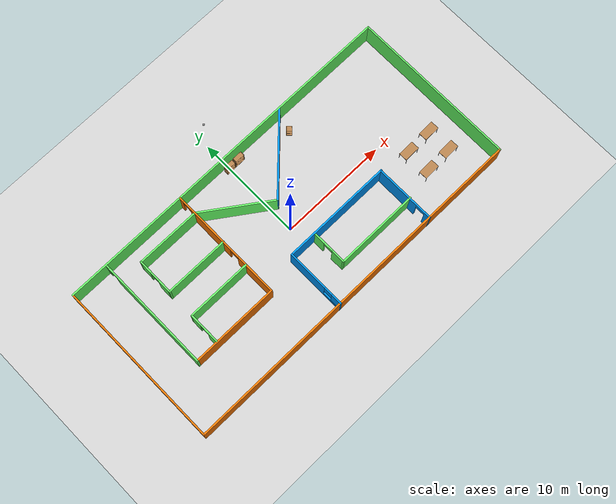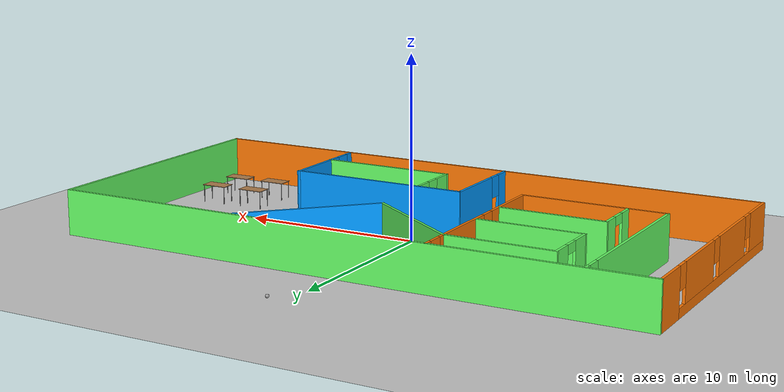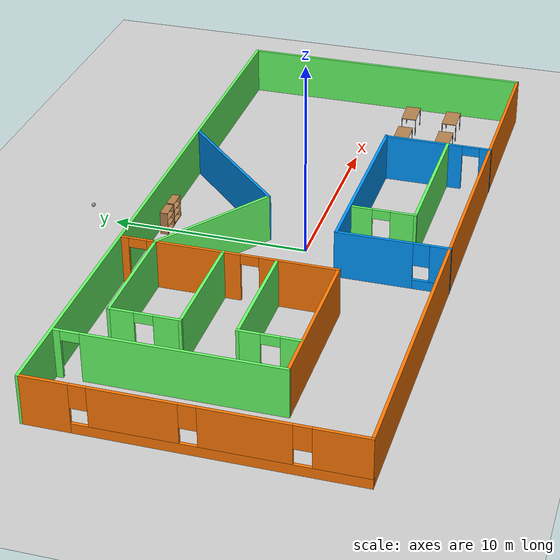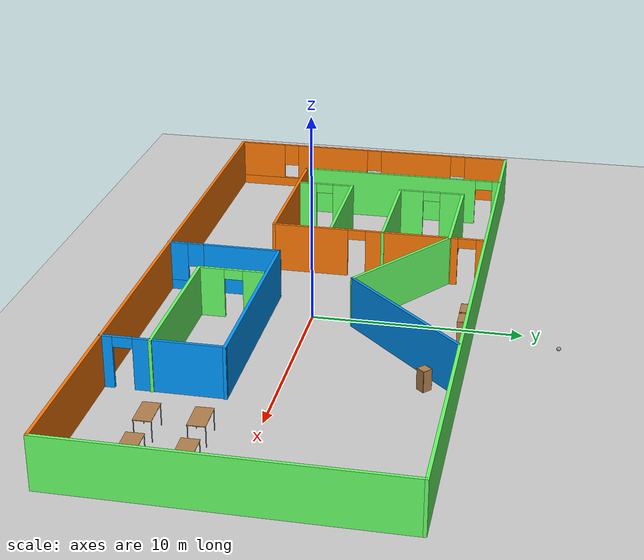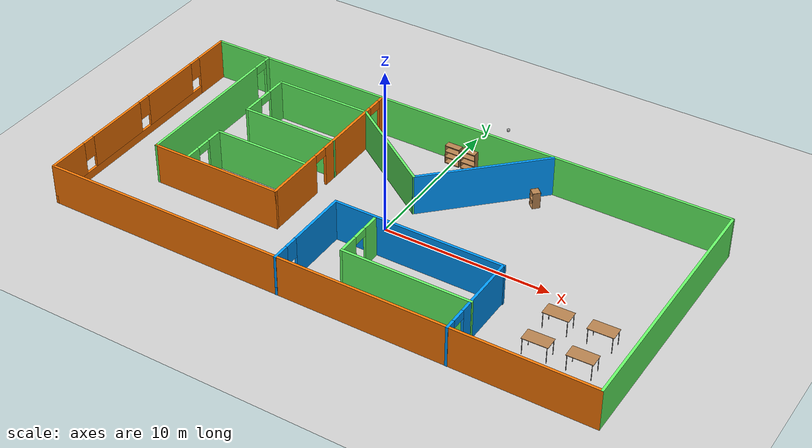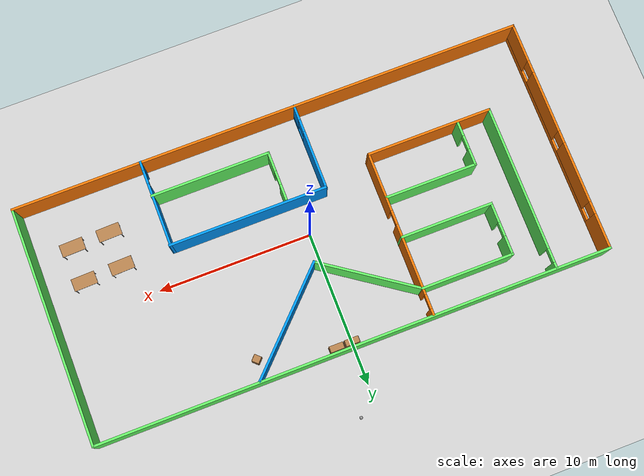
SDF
<sdf version="1.6">
 <world name="default">
  <plugin name="welcome_message" filename="libwelcome_message.so"/>
  <light name="sun" type="directional">
   <pose>0 0 10 0 -0 0</pose>
   <diffuse>0.8 0.8 0.8 1</diffuse>
   <specular>0.2 0.2 0.2 1</specular>
   <attenuation>
    <range>1000</range>
    <constant>0.9</constant>
    <linear>0.01</linear>
    <quadratic>0.001</quadratic>
   </attenuation>
   <direction>-0.5 0.1 -0.9</direction>
  </light>
  <model name="ground_plane">
   <static>1</static>
   <link name="link">
    <collision name="collision">
     <geometry><plane><normal>0 0 1</normal><size>100 100</size></plane></geometry>
     <surface>
      <contact><collide_bitmask>65535</collide_bitmask></contact>
      <friction><ode><mu>100</mu><mu2>50</mu2></ode></friction>
     </surface>
    </collision>
    <visual name="visual">
     <cast_shadows>0</cast_shadows>
     <geometry><plane><normal>0 0 1</normal><size>100 100</size></plane></geometry>
     <material>
      <script><uri>file://media/materials/scripts/gazebo.material</uri><name>Gazebo/Grey</name></script>
     </material>
    </visual>
   </link>
  </model>
  <gravity>0 0 -9.8</gravity>
  <magnetic_field>6e-06 2.3e-05 -4.2e-05</magnetic_field>
  <atmosphere type="adiabatic"/>
  <physics name="default_physics" default="0" type="ode">
   <max_step_size>0.001</max_step_size>
   <real_time_factor>1</real_time_factor>
   <real_time_update_rate>1000</real_time_update_rate>
  </physics>
  <scene><ambient>0.4 0.4 0.4 1</ambient><background>0.7 0.7 0.7 1</background><shadows>1</shadows></scene>
  <spherical_coordinates>
   <surface_model>EARTH_WGS84</surface_model>
   <latitude_deg>0</latitude_deg>
   <longitude_deg>0</longitude_deg>
   <elevation>0</elevation>
   <heading_deg>0</heading_deg>
  </spherical_coordinates>
  <model name="table">
   <static>1</static>
   <link name="link">
    <collision name="surface">
     <pose>0 0 1 0 -0 0</pose>
     <geometry><box><size>1.5 0.8 0.03</size></box></geometry>
     <surface><friction><ode><mu>0.6</mu><mu2>0.6</mu2></ode></friction></surface>
    </collision>
    <visual name="visual1">
     <pose>0 0 1 0 -0 0</pose>
     <geometry><box><size>1.5 0.8 0.03</size></box></geometry>
     <material>
      <script><uri>file://media/materials/scripts/gazebo.material</uri><name>Gazebo/Wood</name></script>
     </material>
    </visual>
    <collision name="front_left_leg">
     <pose>0.68 0.38 0.5 0 -0 0</pose>
     <geometry><cylinder><radius>0.02</radius><length>1</length></cylinder></geometry>
    </collision>
    <visual name="front_left_leg">
     <pose>0.68 0.38 0.5 0 -0 0</pose>
     <geometry><cylinder><radius>0.02</radius><length>1</length></cylinder></geometry>
     <material>
      <script><uri>file://media/materials/scripts/gazebo.material</uri><name>Gazebo/Grey</name></script>
     </material>
    </visual>
    <collision name="front_right_leg">
     <pose>0.68 -0.38 0.5 0 -0 0</pose>
     <geometry><cylinder><radius>0.02</radius><length>1</length></cylinder></geometry>
    </collision>
    <visual name="front_right_leg">
     <pose>0.68 -0.38 0.5 0 -0 0</pose>
     <geometry><cylinder><radius>0.02</radius><length>1</length></cylinder></geometry>
     <material>
      <script><uri>file://media/materials/scripts/gazebo.material</uri><name>Gazebo/Grey</name></script>
     </material>
    </visual>
    <collision name="back_right_leg">
     <pose>-0.68 -0.38 0.5 0 -0 0</pose>
     <geometry><cylinder><radius>0.02</radius><length>1</length></cylinder></geometry>
    </collision>
    <visual name="back_right_leg">
     <pose>-0.68 -0.38 0.5 0 -0 0</pose>
     <geometry><cylinder><radius>0.02</radius><length>1</length></cylinder></geometry>
     <material>
      <script><uri>file://media/materials/scripts/gazebo.material</uri><name>Gazebo/Grey</name></script>
     </material>
    </visual>
    <collision name="back_left_leg">
     <pose>-0.68 0.38 0.5 0 -0 0</pose>
     <geometry><cylinder><radius>0.02</radius><length>1</length></cylinder></geometry>
    </collision>
    <visual name="back_left_leg">
     <pose>-0.68 0.38 0.5 0 -0 0</pose>
     <geometry><cylinder><radius>0.02</radius><length>1</length></cylinder></geometry>
     <material>
      <script><uri>file://media/materials/scripts/gazebo.material</uri><name>Gazebo/Grey</name></script>
     </material>
    </visual>
   </link>
   <pose>11.6082 -2.18604 0 0 0 -3.1167</pose>
  </model>
  <model name="table_clone">
   <static>1</static>
   <link name="link">
    <collision name="surface">
     <pose>0 0 1 0 -0 0</pose>
     <geometry><box><size>1.5 0.8 0.03</size></box></geometry>
     <surface><friction><ode><mu>0.6</mu><mu2>0.6</mu2></ode></friction></surface>
    </collision>
    <visual name="visual1">
     <pose>0 0 1 0 -0 0</pose>
     <geometry><box><size>1.5 0.8 0.03</size></box></geometry>
     <material>
      <script><uri>file://media/materials/scripts/gazebo.material</uri><name>Gazebo/Wood</name></script>
     </material>
    </visual>
    <collision name="front_left_leg">
     <pose>0.68 0.38 0.5 0 -0 0</pose>
     <geometry><cylinder><radius>0.02</radius><length>1</length></cylinder></geometry>
    </collision>
    <visual name="front_left_leg">
     <pose>0.68 0.38 0.5 0 -0 0</pose>
     <geometry><cylinder><radius>0.02</radius><length>1</length></cylinder></geometry>
     <material>
      <script><uri>file://media/materials/scripts/gazebo.material</uri><name>Gazebo/Grey</name></script>
     </material>
    </visual>
    <collision name="front_right_leg">
     <pose>0.68 -0.38 0.5 0 -0 0</pose>
     <geometry><cylinder><radius>0.02</radius><length>1</length></cylinder></geometry>
    </collision>
    <visual name="front_right_leg">
     <pose>0.68 -0.38 0.5 0 -0 0</pose>
     <geometry><cylinder><radius>0.02</radius><length>1</length></cylinder></geometry>
     <material>
      <script><uri>file://media/materials/scripts/gazebo.material</uri><name>Gazebo/Grey</name></script>
     </material>
    </visual>
    <collision name="back_right_leg">
     <pose>-0.68 -0.38 0.5 0 -0 0</pose>
     <geometry><cylinder><radius>0.02</radius><length>1</length></cylinder></geometry>
    </collision>
    <visual name="back_right_leg">
     <pose>-0.68 -0.38 0.5 0 -0 0</pose>
     <geometry><cylinder><radius>0.02</radius><length>1</length></cylinder></geometry>
     <material>
      <script><uri>file://media/materials/scripts/gazebo.material</uri><name>Gazebo/Grey</name></script>
     </material>
    </visual>
    <collision name="back_left_leg">
     <pose>-0.68 0.38 0.5 0 -0 0</pose>
     <geometry><cylinder><radius>0.02</radius><length>1</length></cylinder></geometry>
    </collision>
    <visual name="back_left_leg">
     <pose>-0.68 0.38 0.5 0 -0 0</pose>
     <geometry><cylinder><radius>0.02</radius><length>1</length></cylinder></geometry>
     <material>
      <script><uri>file://media/materials/scripts/gazebo.material</uri><name>Gazebo/Grey</name></script>
     </material>
    </visual>
   </link>
   <pose>14.0607 -2.09028 0 0 0 -3.1167</pose>
  </model>
  <model name="table_clone_0">
   <static>1</static>
   <link name="link">
    <collision name="surface">
     <pose>0 0 1 0 -0 0</pose>
     <geometry><box><size>1.5 0.8 0.03</size></box></geometry>
     <surface><friction><ode><mu>0.6</mu><mu2>0.6</mu2></ode></friction></surface>
    </collision>
    <visual name="visual1">
     <pose>0 0 1 0 -0 0</pose>
     <geometry><box><size>1.5 0.8 0.03</size></box></geometry>
     <material>
      <script><uri>file://media/materials/scripts/gazebo.material</uri><name>Gazebo/Wood</name></script>
     </material>
    </visual>
    <collision name="front_left_leg">
     <pose>0.68 0.38 0.5 0 -0 0</pose>
     <geometry><cylinder><radius>0.02</radius><length>1</length></cylinder></geometry>
    </collision>
    <visual name="front_left_leg">
     <pose>0.68 0.38 0.5 0 -0 0</pose>
     <geometry><cylinder><radius>0.02</radius><length>1</length></cylinder></geometry>
     <material>
      <script><uri>file://media/materials/scripts/gazebo.material</uri><name>Gazebo/Grey</name></script>
     </material>
    </visual>
    <collision name="front_right_leg">
     <pose>0.68 -0.38 0.5 0 -0 0</pose>
     <geometry><cylinder><radius>0.02</radius><length>1</length></cylinder></geometry>
    </collision>
    <visual name="front_right_leg">
     <pose>0.68 -0.38 0.5 0 -0 0</pose>
     <geometry><cylinder><radius>0.02</radius><length>1</length></cylinder></geometry>
     <material>
      <script><uri>file://media/materials/scripts/gazebo.material</uri><name>Gazebo/Grey</name></script>
     </material>
    </visual>
    <collision name="back_right_leg">
     <pose>-0.68 -0.38 0.5 0 -0 0</pose>
     <geometry><cylinder><radius>0.02</radius><length>1</length></cylinder></geometry>
    </collision>
    <visual name="back_right_leg">
     <pose>-0.68 -0.38 0.5 0 -0 0</pose>
     <geometry><cylinder><radius>0.02</radius><length>1</length></cylinder></geometry>
     <material>
      <script><uri>file://media/materials/scripts/gazebo.material</uri><name>Gazebo/Grey</name></script>
     </material>
    </visual>
    <collision name="back_left_leg">
     <pose>-0.68 0.38 0.5 0 -0 0</pose>
     <geometry><cylinder><radius>0.02</radius><length>1</length></cylinder></geometry>
    </collision>
    <visual name="back_left_leg">
     <pose>-0.68 0.38 0.5 0 -0 0</pose>
     <geometry><cylinder><radius>0.02</radius><length>1</length></cylinder></geometry>
     <material>
      <script><uri>file://media/materials/scripts/gazebo.material</uri><name>Gazebo/Grey</name></script>
     </material>
    </visual>
   </link>
   <pose>11.6517 -4.44515 0 0 0 -3.1167</pose>
  </model>
  <model name="table_clone_1">
   <static>1</static>
   <link name="link">
    <collision name="surface">
     <pose>0 0 1 0 -0 0</pose>
     <geometry><box><size>1.5 0.8 0.03</size></box></geometry>
     <surface><friction><ode><mu>0.6</mu><mu2>0.6</mu2></ode></friction></surface>
    </collision>
    <visual name="visual1">
     <pose>0 0 1 0 -0 0</pose>
     <geometry><box><size>1.5 0.8 0.03</size></box></geometry>
     <material>
      <script><uri>file://media/materials/scripts/gazebo.material</uri><name>Gazebo/Wood</name></script>
     </material>
    </visual>
    <collision name="front_left_leg">
     <pose>0.68 0.38 0.5 0 -0 0</pose>
     <geometry><cylinder><radius>0.02</radius><length>1</length></cylinder></geometry>
    </collision>
    <visual name="front_left_leg">
     <pose>0.68 0.38 0.5 0 -0 0</pose>
     <geometry><cylinder><radius>0.02</radius><length>1</length></cylinder></geometry>
     <material>
      <script><uri>file://media/materials/scripts/gazebo.material</uri><name>Gazebo/Grey</name></script>
     </material>
    </visual>
    <collision name="front_right_leg">
     <pose>0.68 -0.38 0.5 0 -0 0</pose>
     <geometry><cylinder><radius>0.02</radius><length>1</length></cylinder></geometry>
    </collision>
    <visual name="front_right_leg">
     <pose>0.68 -0.38 0.5 0 -0 0</pose>
     <geometry><cylinder><radius>0.02</radius><length>1</length></cylinder></geometry>
     <material>
      <script><uri>file://media/materials/scripts/gazebo.material</uri><name>Gazebo/Grey</name></script>
     </material>
    </visual>
    <collision name="back_right_leg">
     <pose>-0.68 -0.38 0.5 0 -0 0</pose>
     <geometry><cylinder><radius>0.02</radius><length>1</length></cylinder></geometry>
    </collision>
    <visual name="back_right_leg">
     <pose>-0.68 -0.38 0.5 0 -0 0</pose>
     <geometry><cylinder><radius>0.02</radius><length>1</length></cylinder></geometry>
     <material>
      <script><uri>file://media/materials/scripts/gazebo.material</uri><name>Gazebo/Grey</name></script>
     </material>
    </visual>
    <collision name="back_left_leg">
     <pose>-0.68 0.38 0.5 0 -0 0</pose>
     <geometry><cylinder><radius>0.02</radius><length>1</length></cylinder></geometry>
    </collision>
    <visual name="back_left_leg">
     <pose>-0.68 0.38 0.5 0 -0 0</pose>
     <geometry><cylinder><radius>0.02</radius><length>1</length></cylinder></geometry>
     <material>
      <script><uri>file://media/materials/scripts/gazebo.material</uri><name>Gazebo/Grey</name></script>
     </material>
    </visual>
   </link>
   <pose>14.0699 -4.36605 0 0 0 -3.1167</pose>
  </model>
  <model name="bookshelf">
   <static>1</static>
   <link name="link">
    <inertial><mass>1</mass></inertial>
    <collision name="back">
     <pose>0 0.005 0.6 0 -0 0</pose>
     <geometry><box><size>0.9 0.01 1.2</size></box></geometry>
    </collision>
    <visual name="visual1">
     <pose>0 0.005 0.6 0 -0 0</pose>
     <geometry><box><size>0.9 0.01 1.2</size></box></geometry>
     <material>
      <script><uri>file://media/materials/scripts/gazebo.material</uri><name>Gazebo/Wood</name></script>
     </material>
    </visual>
    <collision name="left_side">
     <pose>0.45 -0.195 0.6 0 -0 0</pose>
     <geometry><box><size>0.02 0.4 1.2</size></box></geometry>
    </collision>
    <visual name="visual2">
     <pose>0.45 -0.195 0.6 0 -0 0</pose>
     <geometry><box><size>0.02 0.4 1.2</size></box></geometry>
     <material>
      <script><uri>file://media/materials/scripts/gazebo.material</uri><name>Gazebo/Wood</name></script>
     </material>
    </visual>
    <collision name="right_side">
     <pose>-0.45 -0.195 0.6 0 -0 0</pose>
     <geometry><box><size>0.02 0.4 1.2</size></box></geometry>
    </collision>
    <visual name="visual3">
     <pose>-0.45 -0.195 0.6 0 -0 0</pose>
     <geometry><box><size>0.02 0.4 1.2</size></box></geometry>
     <material>
      <script><uri>file://media/materials/scripts/gazebo.material</uri><name>Gazebo/Wood</name></script>
     </material>
    </visual>
    <collision name="bottom">
     <pose>0 -0.195 0.03 0 -0 0</pose>
     <geometry><box><size>0.88 0.4 0.06</size></box></geometry>
    </collision>
    <visual name="visual4">
     <pose>0 -0.195 0.03 0 -0 0</pose>
     <geometry><box><size>0.88 0.4 0.06</size></box></geometry>
     <material>
      <script><uri>file://media/materials/scripts/gazebo.material</uri><name>Gazebo/Wood</name></script>
     </material>
    </visual>
    <collision name="top">
     <pose>0 -0.195 1.19 0 -0 0</pose>
     <geometry><box><size>0.88 0.4 0.02</size></box></geometry>
    </collision>
    <visual name="visual5">
     <pose>0 -0.195 1.19 0 -0 0</pose>
     <geometry><box><size>0.88 0.4 0.02</size></box></geometry>
     <material>
      <script><uri>file://media/materials/scripts/gazebo.material</uri><name>Gazebo/Wood</name></script>
     </material>
    </visual>
    <collision name="low_shelf">
     <pose>0 -0.195 0.43 0 -0 0</pose>
     <geometry><box><size>0.88 0.4 0.02</size></box></geometry>
    </collision>
    <visual name="visual6">
     <pose>0 -0.195 0.43 0 -0 0</pose>
     <geometry><box><size>0.88 0.4 0.02</size></box></geometry>
     <material>
      <script><uri>file://media/materials/scripts/gazebo.material</uri><name>Gazebo/Wood</name></script>
     </material>
    </visual>
    <collision name="high_shelf">
     <pose>0 -0.195 0.8 0 -0 0</pose>
     <geometry><box><size>0.88 0.4 0.02</size></box></geometry>
    </collision>
    <visual name="visual7">
     <pose>0 -0.195 0.8 0 -0 0</pose>
     <geometry><box><size>0.88 0.4 0.02</size></box></geometry>
     <material>
      <script><uri>file://media/materials/scripts/gazebo.material</uri><name>Gazebo/Wood</name></script>
     </material>
    </visual>
   </link>
   <pose>0.026391 7.43705 0 0 -0 0</pose>
  </model>
  <model name="bookshelf_clone">
   <static>1</static>
   <link name="link">
    <inertial><mass>1</mass></inertial>
    <collision name="back">
     <pose>0 0.005 0.6 0 -0 0</pose>
     <geometry><box><size>0.9 0.01 1.2</size></box></geometry>
    </collision>
    <visual name="visual1">
     <pose>0 0.005 0.6 0 -0 0</pose>
     <geometry><box><size>0.9 0.01 1.2</size></box></geometry>
     <material>
      <script><uri>file://media/materials/scripts/gazebo.material</uri><name>Gazebo/Wood</name></script>
     </material>
    </visual>
    <collision name="left_side">
     <pose>0.45 -0.195 0.6 0 -0 0</pose>
     <geometry><box><size>0.02 0.4 1.2</size></box></geometry>
    </collision>
    <visual name="visual2">
     <pose>0.45 -0.195 0.6 0 -0 0</pose>
     <geometry><box><size>0.02 0.4 1.2</size></box></geometry>
     <material>
      <script><uri>file://media/materials/scripts/gazebo.material</uri><name>Gazebo/Wood</name></script>
     </material>
    </visual>
    <collision name="right_side">
     <pose>-0.45 -0.195 0.6 0 -0 0</pose>
     <geometry><box><size>0.02 0.4 1.2</size></box></geometry>
    </collision>
    <visual name="visual3">
     <pose>-0.45 -0.195 0.6 0 -0 0</pose>
     <geometry><box><size>0.02 0.4 1.2</size></box></geometry>
     <material>
      <script><uri>file://media/materials/scripts/gazebo.material</uri><name>Gazebo/Wood</name></script>
     </material>
    </visual>
    <collision name="bottom">
     <pose>0 -0.195 0.03 0 -0 0</pose>
     <geometry><box><size>0.88 0.4 0.06</size></box></geometry>
    </collision>
    <visual name="visual4">
     <pose>0 -0.195 0.03 0 -0 0</pose>
     <geometry><box><size>0.88 0.4 0.06</size></box></geometry>
     <material>
      <script><uri>file://media/materials/scripts/gazebo.material</uri><name>Gazebo/Wood</name></script>
     </material>
    </visual>
    <collision name="top">
     <pose>0 -0.195 1.19 0 -0 0</pose>
     <geometry><box><size>0.88 0.4 0.02</size></box></geometry>
    </collision>
    <visual name="visual5">
     <pose>0 -0.195 1.19 0 -0 0</pose>
     <geometry><box><size>0.88 0.4 0.02</size></box></geometry>
     <material>
      <script><uri>file://media/materials/scripts/gazebo.material</uri><name>Gazebo/Wood</name></script>
     </material>
    </visual>
    <collision name="low_shelf">
     <pose>0 -0.195 0.43 0 -0 0</pose>
     <geometry><box><size>0.88 0.4 0.02</size></box></geometry>
    </collision>
    <visual name="visual6">
     <pose>0 -0.195 0.43 0 -0 0</pose>
     <geometry><box><size>0.88 0.4 0.02</size></box></geometry>
     <material>
      <script><uri>file://media/materials/scripts/gazebo.material</uri><name>Gazebo/Wood</name></script>
     </material>
    </visual>
    <collision name="high_shelf">
     <pose>0 -0.195 0.8 0 -0 0</pose>
     <geometry><box><size>0.88 0.4 0.02</size></box></geometry>
    </collision>
    <visual name="visual7">
     <pose>0 -0.195 0.8 0 -0 0</pose>
     <geometry><box><size>0.88 0.4 0.02</size></box></geometry>
     <material>
      <script><uri>file://media/materials/scripts/gazebo.material</uri><name>Gazebo/Wood</name></script>
     </material>
    </visual>
   </link>
   <pose>1.03331 7.45484 0 0 -0 0</pose>
  </model>
  <model name="cabinet">
   <static>1</static>
   <link name="cabinet_bottom_plate">
    <inertial>
     <pose>0 0 -1 0 -0 0</pose>
     <inertia><ixx>2.05</ixx><ixy>0</ixy><ixz>0</ixz><iyy>2.05</iyy><iyz>0</iyz><izz>2.05</izz></inertia>
     <mass>25</mass>
    </inertial>
    <collision name="cabinet_bottom_plate_geom">
     <pose>0 0 0.01 0 -0 0</pose>
     <geometry><box><size>0.45 0.45 0.02</size></box></geometry>
    </collision>
    <visual name="cabinet_bottom_plate_geom_visual">
     <pose>0 0 0.01 0 -0 0</pose>
     <geometry><box><size>0.45 0.45 0.02</size></box></geometry>
     <material>
      <script><uri>file://media/materials/scripts/gazebo.material</uri><name>Gazebo/Wood</name></script>
     </material>
    </visual>
    <collision name="cabinet_bottom_plate_geom_cabinet_back_plate">
     <pose>0.235 0 0.51 0 -0 0</pose>
     <geometry><box><size>0.02 0.45 1.02</size></box></geometry>
    </collision>
    <visual name="cabinet_bottom_plate_geom_cabinet_back_plate_visual">
     <pose>0.235 0 0.51 0 -0 0</pose>
     <geometry><box><size>0.02 0.45 1.02</size></box></geometry>
     <material>
      <script><uri>file://media/materials/scripts/gazebo.material</uri><name>Gazebo/Wood</name></script>
     </material>
    </visual>
    <collision name="cabinet_bottom_plate_geom_cabinet_left_plate">
     <pose>0 0.235 0.51 0 -0 0</pose>
     <geometry><box><size>0.45 0.02 1.02</size></box></geometry>
    </collision>
    <visual name="cabinet_bottom_plate_geom_cabinet_left_plate_visual">
     <pose>0 0.235 0.51 0 -0 0</pose>
     <geometry><box><size>0.45 0.02 1.02</size></box></geometry>
     <material>
      <script><uri>file://media/materials/scripts/gazebo.material</uri><name>Gazebo/Wood</name></script>
     </material>
    </visual>
    <collision name="cabinet_bottom_plate_geom_cabinet_middle_plate">
     <pose>0 0 0.51 0 -0 0</pose>
     <geometry><box><size>0.45 0.45 0.02</size></box></geometry>
    </collision>
    <visual name="cabinet_bottom_plate_geom_cabinet_middle_plate_visual">
     <pose>0 0 0.51 0 -0 0</pose>
     <geometry><box><size>0.45 0.45 0.02</size></box></geometry>
     <material>
      <script><uri>file://media/materials/scripts/gazebo.material</uri><name>Gazebo/Wood</name></script>
     </material>
    </visual>
    <collision name="cabinet_bottom_plate_geom_cabinet_right_plate">
     <pose>0 -0.235 0.51 0 -0 0</pose>
     <geometry><box><size>0.45 0.02 1.02</size></box></geometry>
    </collision>
    <visual name="cabinet_bottom_plate_geom_cabinet_right_plate_visual">
     <pose>0 -0.235 0.51 0 -0 0</pose>
     <geometry><box><size>0.45 0.02 1.02</size></box></geometry>
     <material>
      <script><uri>file://media/materials/scripts/gazebo.material</uri><name>Gazebo/Wood</name></script>
     </material>
    </visual>
    <collision name="cabinet_bottom_plate_geom_cabinet_top_plate">
     <pose>0 0 1.01 0 -0 0</pose>
     <geometry><box><size>0.45 0.45 0.02</size></box></geometry>
    </collision>
    <visual name="cabinet_bottom_plate_geom_cabinet_top_plate_visual">
     <pose>0 0 1.01 0 -0 0</pose>
     <geometry><box><size>0.45 0.45 0.02</size></box></geometry>
     <material>
      <script><uri>file://media/materials/scripts/gazebo.material</uri><name>Gazebo/Wood</name></script>
     </material>
    </visual>
   </link>
   <pose>5.82905 6.16127 0 0 -0 0.814319</pose>
  </model>
  <model name="building">
   <pose>0.015 0.07 0 0 -0 0</pose>
   <link name="Wall_0">
    <pose>-16.55 -0.032838 0 0 0 -1.5708</pose>
    <visual name="Wall_0_Visual_0">
     <pose>-6.49529 0 1.25 0 -0 0</pose>
     <geometry><box><size>2.27633 0.15 2.5</size></box></geometry>
     <material>
      <script><uri>file://media/materials/scripts/gazebo.material</uri><name>Gazebo/Grey</name></script>
      <ambient>0.996078 0.47451 0.0196078 1</ambient>
     </material>
     <meta><layer>0</layer></meta>
    </visual>
    <collision name="Wall_0_Collision_0">
     <geometry><box><size>2.27633 0.15 2.5</size></box></geometry>
     <pose>-6.49529 0 1.25 0 -0 0</pose>
    </collision>
    <visual name="Wall_0_Visual_1">
     <pose>1.13817 0 0.25 0 -0 0</pose>
     <geometry><box><size>12.9906 0.15 0.5</size></box></geometry>
     <material>
      <script><uri>file://media/materials/scripts/gazebo.material</uri><name>Gazebo/Grey</name></script>
      <ambient>0.996078 0.47451 0.0196078 1</ambient>
     </material>
     <meta><layer>0</layer></meta>
    </visual>
    <collision name="Wall_0_Collision_1">
     <geometry><box><size>12.9906 0.15 0.5</size></box></geometry>
     <pose>1.13817 0 0.25 0 -0 0</pose>
    </collision>
    <visual name="Wall_0_Visual_2">
     <pose>-2.56311 0 1.5 0 -0 0</pose>
     <geometry><box><size>3.98804 0.15 2</size></box></geometry>
     <material>
      <script><uri>file://media/materials/scripts/gazebo.material</uri><name>Gazebo/Grey</name></script>
      <ambient>0.996078 0.47451 0.0196078 1</ambient>
     </material>
     <meta><layer>0</layer></meta>
    </visual>
    <collision name="Wall_0_Collision_2">
     <geometry><box><size>3.98804 0.15 2</size></box></geometry>
     <pose>-2.56311 0 1.5 0 -0 0</pose>
    </collision>
    <visual name="Wall_0_Visual_3">
     <pose>2.25962 0 1.5 0 -0 0</pose>
     <geometry><box><size>4.05743 0.15 2</size></box></geometry>
     <material>
      <script><uri>file://media/materials/scripts/gazebo.material</uri><name>Gazebo/Grey</name></script>
      <ambient>0.996078 0.47451 0.0196078 1</ambient>
     </material>
     <meta><layer>0</layer></meta>
    </visual>
    <collision name="Wall_0_Collision_3">
     <geometry><box><size>4.05743 0.15 2</size></box></geometry>
     <pose>2.25962 0 1.5 0 -0 0</pose>
    </collision>
    <visual name="Wall_0_Visual_4">
     <pose>6.3609 0 1.5 0 -0 0</pose>
     <geometry><box><size>2.54512 0.15 2</size></box></geometry>
     <material>
      <script><uri>file://media/materials/scripts/gazebo.material</uri><name>Gazebo/Grey</name></script>
      <ambient>0.996078 0.47451 0.0196078 1</ambient>
     </material>
     <meta><layer>0</layer></meta>
    </visual>
    <collision name="Wall_0_Collision_4">
     <geometry><box><size>2.54512 0.15 2</size></box></geometry>
     <pose>6.3609 0 1.5 0 -0 0</pose>
    </collision>
    <visual name="Wall_0_Visual_5">
     <pose>-4.95713 0 1.9 0 -0 0</pose>
     <geometry><box><size>0.8 0.15 1.2</size></box></geometry>
     <material>
      <script><uri>file://media/materials/scripts/gazebo.material</uri><name>Gazebo/Grey</name></script>
      <ambient>0.996078 0.47451 0.0196078 1</ambient>
     </material>
     <meta><layer>0</layer></meta>
    </visual>
    <collision name="Wall_0_Collision_5">
     <geometry><box><size>0.8 0.15 1.2</size></box></geometry>
     <pose>-4.95713 0 1.9 0 -0 0</pose>
    </collision>
    <visual name="Wall_0_Visual_6">
     <pose>-0.169093 0 1.9 0 -0 0</pose>
     <geometry><box><size>0.8 0.15 1.2</size></box></geometry>
     <material>
      <script><uri>file://media/materials/scripts/gazebo.material</uri><name>Gazebo/Grey</name></script>
      <ambient>0.996078 0.47451 0.0196078 1</ambient>
     </material>
     <meta><layer>0</layer></meta>
    </visual>
    <collision name="Wall_0_Collision_6">
     <geometry><box><size>0.8 0.15 1.2</size></box></geometry>
     <pose>-0.169093 0 1.9 0 -0 0</pose>
    </collision>
    <visual name="Wall_0_Visual_7">
     <pose>4.68834 0 1.9 0 -0 0</pose>
     <geometry><box><size>0.8 0.15 1.2</size></box></geometry>
     <material>
      <script><uri>file://media/materials/scripts/gazebo.material</uri><name>Gazebo/Grey</name></script>
      <ambient>0.996078 0.47451 0.0196078 1</ambient>
     </material>
     <meta><layer>0</layer></meta>
    </visual>
    <collision name="Wall_0_Collision_7">
     <geometry><box><size>0.8 0.15 1.2</size></box></geometry>
     <pose>4.68834 0 1.9 0 -0 0</pose>
    </collision>
   </link>
   <link name="Wall_1">
    <collision name="Wall_1_Collision">
     <geometry><box><size>33.25 0.15 2.5</size></box></geometry>
     <pose>0 0 1.25 0 -0 0</pose>
    </collision>
    <visual name="Wall_1_Visual">
     <pose>0 0 1.25 0 -0 0</pose>
     <geometry><box><size>33.25 0.15 2.5</size></box></geometry>
     <material>
      <script><uri>file://media/materials/scripts/gazebo.material</uri><name>Gazebo/Grey</name></script>
      <ambient>0.996078 0.47451 0.0196078 1</ambient>
     </material>
     <meta><layer>0</layer></meta>
    </visual>
    <pose>0 -7.5913 0 0 -0 0</pose>
   </link>
   <link name="Wall_12">
    <pose>-5.03542 2.22406 0 0 0 -1.5708</pose>
    <visual name="Wall_12_Visual_0">
     <pose>-5.14797 0 1.25 0 -0 0</pose>
     <geometry><box><size>0.45406 0.15 2.5</size></box></geometry>
     <material>
      <script><uri>file://media/materials/scripts/gazebo.material</uri><name>Gazebo/Grey</name></script>
      <ambient>0.996078 0.47451 0.0196078 1</ambient>
     </material>
     <meta><layer>0</layer></meta>
    </visual>
    <collision name="Wall_12_Collision_0">
     <geometry><box><size>0.45406 0.15 2.5</size></box></geometry>
     <pose>-5.14797 0 1.25 0 -0 0</pose>
    </collision>
    <visual name="Wall_12_Visual_1">
     <pose>-1.70616 0 1.25 0 -0 0</pose>
     <geometry><box><size>4.62955 0.15 2.5</size></box></geometry>
     <material>
      <script><uri>file://media/materials/scripts/gazebo.material</uri><name>Gazebo/Grey</name></script>
      <ambient>0.996078 0.47451 0.0196078 1</ambient>
     </material>
     <meta><layer>0</layer></meta>
    </visual>
    <collision name="Wall_12_Collision_1">
     <geometry><box><size>4.62955 0.15 2.5</size></box></geometry>
     <pose>-1.70616 0 1.25 0 -0 0</pose>
    </collision>
    <visual name="Wall_12_Visual_2">
     <pose>3.44181 0 1.25 0 -0 0</pose>
     <geometry><box><size>3.86639 0.15 2.5</size></box></geometry>
     <material>
      <script><uri>file://media/materials/scripts/gazebo.material</uri><name>Gazebo/Grey</name></script>
      <ambient>0.996078 0.47451 0.0196078 1</ambient>
     </material>
     <meta><layer>0</layer></meta>
    </visual>
    <collision name="Wall_12_Collision_2">
     <geometry><box><size>3.86639 0.15 2.5</size></box></geometry>
     <pose>3.44181 0 1.25 0 -0 0</pose>
    </collision>
    <visual name="Wall_12_Visual_3">
     <pose>-4.47094 0 2.25 0 -0 0</pose>
     <geometry><box><size>0.9 0.15 0.5</size></box></geometry>
     <material>
      <script><uri>file://media/materials/scripts/gazebo.material</uri><name>Gazebo/Grey</name></script>
      <ambient>0.996078 0.47451 0.0196078 1</ambient>
     </material>
     <meta><layer>0</layer></meta>
    </visual>
    <collision name="Wall_12_Collision_3">
     <geometry><box><size>0.9 0.15 0.5</size></box></geometry>
     <pose>-4.47094 0 2.25 0 -0 0</pose>
    </collision>
    <visual name="Wall_12_Visual_4">
     <pose>1.05861 0 2.25 0 -0 0</pose>
     <geometry><box><size>0.9 0.15 0.5</size></box></geometry>
     <material>
      <script><uri>file://media/materials/scripts/gazebo.material</uri><name>Gazebo/Grey</name></script>
      <ambient>0.996078 0.47451 0.0196078 1</ambient>
     </material>
     <meta><layer>0</layer></meta>
    </visual>
    <collision name="Wall_12_Collision_4">
     <geometry><box><size>0.9 0.15 0.5</size></box></geometry>
     <pose>1.05861 0 2.25 0 -0 0</pose>
    </collision>
   </link>
   <link name="Wall_13">
    <collision name="Wall_13_Collision">
     <geometry><box><size>8.121 0.15 2.5</size></box></geometry>
     <pose>0 0 1.25 0 -0 0</pose>
    </collision>
    <visual name="Wall_13_Visual">
     <pose>0 0 1.25 0 -0 0</pose>
     <geometry><box><size>8.121 0.15 2.5</size></box></geometry>
     <material>
      <script><uri>file://media/materials/scripts/gazebo.material</uri><name>Gazebo/Grey</name></script>
      <ambient>0.996078 0.47451 0.0196078 1</ambient>
     </material>
     <meta><layer>0</layer></meta>
    </visual>
    <pose>-9.02092 -3.07594 0 0 -0 3.14159</pose>
   </link>
   <link name="Wall_14">
    <pose>-13.0409 2.22406 0 0 -0 1.5708</pose>
    <visual name="Wall_14_Visual_0">
     <pose>-0.656558 0 1.25 0 -0 0</pose>
     <geometry><box><size>9.43689 0.15 2.5</size></box></geometry>
     <material>
      <script><uri>file://media/materials/scripts/gazebo.material</uri><name>Gazebo/Grey</name></script>
      <ambient>0.4 1 0.4 1</ambient>
     </material>
     <meta><layer>0</layer></meta>
    </visual>
    <collision name="Wall_14_Collision_0">
     <geometry><box><size>9.43689 0.15 2.5</size></box></geometry>
     <pose>-0.656558 0 1.25 0 -0 0</pose>
    </collision>
    <visual name="Wall_14_Visual_1">
     <pose>5.16844 0 1.25 0 -0 0</pose>
     <geometry><box><size>0.413115 0.15 2.5</size></box></geometry>
     <material>
      <script><uri>file://media/materials/scripts/gazebo.material</uri><name>Gazebo/Grey</name></script>
      <ambient>0.4 1 0.4 1</ambient>
     </material>
     <meta><layer>0</layer></meta>
    </visual>
    <collision name="Wall_14_Collision_1">
     <geometry><box><size>0.413115 0.15 2.5</size></box></geometry>
     <pose>5.16844 0 1.25 0 -0 0</pose>
    </collision>
    <visual name="Wall_14_Visual_2">
     <pose>4.51189 0 2.25 0 -0 0</pose>
     <geometry><box><size>0.9 0.15 0.5</size></box></geometry>
     <material>
      <script><uri>file://media/materials/scripts/gazebo.material</uri><name>Gazebo/Grey</name></script>
      <ambient>0.4 1 0.4 1</ambient>
     </material>
     <meta><layer>0</layer></meta>
    </visual>
    <collision name="Wall_14_Collision_2">
     <geometry><box><size>0.9 0.15 0.5</size></box></geometry>
     <pose>4.51189 0 2.25 0 -0 0</pose>
    </collision>
   </link>
   <link name="Wall_16">
    <collision name="Wall_16_Collision">
     <geometry><box><size>6 0.15 2.5</size></box></geometry>
     <pose>0 0 1.25 0 -0 0</pose>
    </collision>
    <visual name="Wall_16_Visual">
     <pose>0 0 1.25 0 -0 0</pose>
     <geometry><box><size>6 0.15 2.5</size></box></geometry>
     <material>
      <script><uri>file://media/materials/scripts/gazebo.material</uri><name>Gazebo/Grey</name></script>
      <ambient>0.4 1 0.4 1</ambient>
     </material>
     <meta><layer>0</layer></meta>
    </visual>
    <pose>-7.99073 -0.155009 0 0 -0 3.14159</pose>
   </link>
   <link name="Wall_17">
    <pose>-10.9157 -1.58001 0 0 0 -1.5708</pose>
    <visual name="Wall_17_Visual_0">
     <pose>-0.944857 0 1.25 0 -0 0</pose>
     <geometry><box><size>1.11029 0.15 2.5</size></box></geometry>
     <material>
      <script><uri>file://media/materials/scripts/gazebo.material</uri><name>Gazebo/Grey</name></script>
      <ambient>0.4 1 0.4 1</ambient>
     </material>
     <meta><layer>0</layer></meta>
    </visual>
    <collision name="Wall_17_Collision_0">
     <geometry><box><size>1.11029 0.15 2.5</size></box></geometry>
     <pose>-0.944857 0 1.25 0 -0 0</pose>
    </collision>
    <visual name="Wall_17_Visual_1">
     <pose>1.00514 0 1.25 0 -0 0</pose>
     <geometry><box><size>0.989714 0.15 2.5</size></box></geometry>
     <material>
      <script><uri>file://media/materials/scripts/gazebo.material</uri><name>Gazebo/Grey</name></script>
      <ambient>0.4 1 0.4 1</ambient>
     </material>
     <meta><layer>0</layer></meta>
    </visual>
    <collision name="Wall_17_Collision_1">
     <geometry><box><size>0.989714 0.15 2.5</size></box></geometry>
     <pose>1.00514 0 1.25 0 -0 0</pose>
    </collision>
    <visual name="Wall_17_Visual_2">
     <pose>0.060286 0 2.25 0 -0 0</pose>
     <geometry><box><size>0.9 0.15 0.5</size></box></geometry>
     <material>
      <script><uri>file://media/materials/scripts/gazebo.material</uri><name>Gazebo/Grey</name></script>
      <ambient>0.4 1 0.4 1</ambient>
     </material>
     <meta><layer>0</layer></meta>
    </visual>
    <collision name="Wall_17_Collision_2">
     <geometry><box><size>0.9 0.15 0.5</size></box></geometry>
     <pose>0.060286 0 2.25 0 -0 0</pose>
    </collision>
   </link>
   <link name="Wall_19">
    <collision name="Wall_19_Collision">
     <geometry><box><size>6 0.15 2.5</size></box></geometry>
     <pose>0 0 1.25 0 -0 0</pose>
    </collision>
    <visual name="Wall_19_Visual">
     <pose>0 0 1.25 0 -0 0</pose>
     <geometry><box><size>6 0.15 2.5</size></box></geometry>
     <material>
      <script><uri>file://media/materials/scripts/gazebo.material</uri><name>Gazebo/Grey</name></script>
      <ambient>0.4 1 0.4 1</ambient>
     </material>
     <meta><layer>0</layer></meta>
    </visual>
    <pose>-7.95065 2.47458 0 0 -0 3.14159</pose>
   </link>
   <link name="Wall_2">
    <collision name="Wall_2_Collision">
     <geometry><box><size>15.2859 0.15 2.5</size></box></geometry>
     <pose>0 0 1.25 0 -0 0</pose>
    </collision>
    <visual name="Wall_2_Visual">
     <pose>0 0 1.25 0 -0 0</pose>
     <geometry><box><size>15.2859 0.15 2.5</size></box></geometry>
     <material>
      <script><uri>file://media/materials/scripts/gazebo.material</uri><name>Gazebo/Grey</name></script>
      <ambient>0.4 1 0.4 1</ambient>
     </material>
     <meta><layer>0</layer></meta>
    </visual>
    <pose>16.55 -0.023322 0 0 -0 1.5708</pose>
   </link>
   <link name="Wall_20">
    <pose>-10.8756 4.14957 0 0 -0 1.5708</pose>
    <visual name="Wall_20_Visual_0">
     <pose>-1.08633 0 1.25 0 -0 0</pose>
     <geometry><box><size>1.32733 0.15 2.5</size></box></geometry>
     <material>
      <script><uri>file://media/materials/scripts/gazebo.material</uri><name>Gazebo/Grey</name></script>
      <ambient>0.4 1 0.4 1</ambient>
     </material>
     <meta><layer>0</layer></meta>
    </visual>
    <collision name="Wall_20_Collision_0">
     <geometry><box><size>1.32733 0.15 2.5</size></box></geometry>
     <pose>-1.08633 0 1.25 0 -0 0</pose>
    </collision>
    <visual name="Wall_20_Visual_1">
     <pose>1.11367 0 1.25 0 -0 0</pose>
     <geometry><box><size>1.27266 0.15 2.5</size></box></geometry>
     <material>
      <script><uri>file://media/materials/scripts/gazebo.material</uri><name>Gazebo/Grey</name></script>
      <ambient>0.4 1 0.4 1</ambient>
     </material>
     <meta><layer>0</layer></meta>
    </visual>
    <collision name="Wall_20_Collision_1">
     <geometry><box><size>1.27266 0.15 2.5</size></box></geometry>
     <pose>1.11367 0 1.25 0 -0 0</pose>
    </collision>
    <visual name="Wall_20_Visual_2">
     <pose>0.027335 0 2.25 0 -0 0</pose>
     <geometry><box><size>0.9 0.15 0.5</size></box></geometry>
     <material>
      <script><uri>file://media/materials/scripts/gazebo.material</uri><name>Gazebo/Grey</name></script>
      <ambient>0.4 1 0.4 1</ambient>
     </material>
     <meta><layer>0</layer></meta>
    </visual>
    <collision name="Wall_20_Collision_2">
     <geometry><box><size>0.9 0.15 0.5</size></box></geometry>
     <pose>0.027335 0 2.25 0 -0 0</pose>
    </collision>
   </link>
   <link name="Wall_21">
    <collision name="Wall_21_Collision">
     <geometry><box><size>6 0.15 2.5</size></box></geometry>
     <pose>0 0 1.25 0 -0 0</pose>
    </collision>
    <visual name="Wall_21_Visual">
     <pose>0 0 1.25 0 -0 0</pose>
     <geometry><box><size>6 0.15 2.5</size></box></geometry>
     <material>
      <script><uri>file://media/materials/scripts/gazebo.material</uri><name>Gazebo/Grey</name></script>
      <ambient>0.4 1 0.4 1</ambient>
     </material>
     <meta><layer>0</layer></meta>
    </visual>
    <pose>-7.95065 5.82458 0 0 -0 0</pose>
   </link>
   <link name="Wall_24">
    <collision name="Wall_24_Collision">
     <geometry><box><size>6.89799 0.15 2.5</size></box></geometry>
     <pose>0 0 1.25 0 -0 0</pose>
    </collision>
    <visual name="Wall_24_Visual">
     <pose>0 0 1.25 0 -0 0</pose>
     <geometry><box><size>6.89799 0.15 2.5</size></box></geometry>
     <material>
      <script><uri>file://media/materials/scripts/gazebo.material</uri><name>Gazebo/Grey</name></script>
      <ambient>0.4 1 0.4 1</ambient>
     </material>
     <meta><layer>0</layer></meta>
    </visual>
    <pose>-2.25514 3.89893 0 0 -0 2.53419</pose>
   </link>
   <link name="Wall_26">
    <collision name="Wall_26_Collision">
     <geometry><box><size>7.75 0.15 2.5</size></box></geometry>
     <pose>0 0 1.25 0 -0 0</pose>
    </collision>
    <visual name="Wall_26_Visual">
     <pose>0 0 1.25 0 -0 0</pose>
     <geometry><box><size>7.75 0.15 2.5</size></box></geometry>
     <material>
      <script><uri>file://media/materials/scripts/gazebo.material</uri><name>Gazebo/Grey</name></script>
      <ambient>0.4 1 0.4 1</ambient>
     </material>
     <meta><layer>0</layer></meta>
    </visual>
    <pose>4.50959 -5.36654 0 0 -0 3.14159</pose>
   </link>
   <link name="Wall_27">
    <pose>0.709589 -3.81654 0 0 -0 1.5708</pose>
    <visual name="Wall_27_Visual_0">
     <pose>-0.969836 0 1.25 0 -0 0</pose>
     <geometry><box><size>1.31033 0.15 2.5</size></box></geometry>
     <material>
      <script><uri>file://media/materials/scripts/gazebo.material</uri><name>Gazebo/Grey</name></script>
      <ambient>0.4 1 0.4 1</ambient>
     </material>
     <meta><layer>0</layer></meta>
    </visual>
    <collision name="Wall_27_Collision_0">
     <geometry><box><size>1.31033 0.15 2.5</size></box></geometry>
     <pose>-0.969836 0 1.25 0 -0 0</pose>
    </collision>
    <visual name="Wall_27_Visual_1">
     <pose>1.10516 0 1.25 0 -0 0</pose>
     <geometry><box><size>1.03967 0.15 2.5</size></box></geometry>
     <material>
      <script><uri>file://media/materials/scripts/gazebo.material</uri><name>Gazebo/Grey</name></script>
      <ambient>0.4 1 0.4 1</ambient>
     </material>
     <meta><layer>0</layer></meta>
    </visual>
    <collision name="Wall_27_Collision_1">
     <geometry><box><size>1.03967 0.15 2.5</size></box></geometry>
     <pose>1.10516 0 1.25 0 -0 0</pose>
    </collision>
    <visual name="Wall_27_Visual_2">
     <pose>0.135329 0 2.25 0 -0 0</pose>
     <geometry><box><size>0.9 0.15 0.5</size></box></geometry>
     <material>
      <script><uri>file://media/materials/scripts/gazebo.material</uri><name>Gazebo/Grey</name></script>
      <ambient>0.4 1 0.4 1</ambient>
     </material>
     <meta><layer>0</layer></meta>
    </visual>
    <collision name="Wall_27_Collision_2">
     <geometry><box><size>0.9 0.15 0.5</size></box></geometry>
     <pose>0.135329 0 2.25 0 -0 0</pose>
    </collision>
   </link>
   <link name="Wall_3">
    <collision name="Wall_3_Collision">
     <geometry><box><size>33.25 0.15 2.5</size></box></geometry>
     <pose>0 0 1.25 0 -0 0</pose>
    </collision>
    <visual name="Wall_3_Visual">
     <pose>0 0 1.25 0 -0 0</pose>
     <geometry><box><size>33.25 0.15 2.5</size></box></geometry>
     <material>
      <script><uri>file://media/materials/scripts/gazebo.material</uri><name>Gazebo/Grey</name></script>
      <ambient>0.4 1 0.4 1</ambient>
     </material>
     <meta><layer>0</layer></meta>
    </visual>
    <pose>0 7.59548 0 0 0 -3.14102</pose>
   </link>
   <link name="Wall_5">
    <pose>8.26954 -4.84688 0 0 -0 1.5708</pose>
    <visual name="Wall_5_Visual_0">
     <pose>-2.52337 0 1.25 0 -0 0</pose>
     <geometry><box><size>0.619563 0.15 2.5</size></box></geometry>
     <material>
      <script><uri>file://media/materials/scripts/gazebo.material</uri><name>Gazebo/Grey</name></script>
      <ambient>0 0.6 1 1</ambient>
     </material>
     <meta><layer>0</layer></meta>
    </visual>
    <collision name="Wall_5_Collision_0">
     <geometry><box><size>0.619563 0.15 2.5</size></box></geometry>
     <pose>-2.52337 0 1.25 0 -0 0</pose>
    </collision>
    <visual name="Wall_5_Visual_1">
     <pose>0.759782 0 1.25 0 -0 0</pose>
     <geometry><box><size>4.14674 0.15 2.5</size></box></geometry>
     <material>
      <script><uri>file://media/materials/scripts/gazebo.material</uri><name>Gazebo/Grey</name></script>
      <ambient>0 0.6 1 1</ambient>
     </material>
     <meta><layer>0</layer></meta>
    </visual>
    <collision name="Wall_5_Collision_1">
     <geometry><box><size>4.14674 0.15 2.5</size></box></geometry>
     <pose>0.759782 0 1.25 0 -0 0</pose>
    </collision>
    <visual name="Wall_5_Visual_2">
     <pose>-1.76359 0 2.25 0 -0 0</pose>
     <geometry><box><size>0.9 0.15 0.5</size></box></geometry>
     <material>
      <script><uri>file://media/materials/scripts/gazebo.material</uri><name>Gazebo/Grey</name></script>
      <ambient>0 0.6 1 1</ambient>
     </material>
     <meta><layer>0</layer></meta>
    </visual>
    <collision name="Wall_5_Collision_2">
     <geometry><box><size>0.9 0.15 0.5</size></box></geometry>
     <pose>-1.76359 0 2.25 0 -0 0</pose>
    </collision>
   </link>
   <link name="Wall_6">
    <collision name="Wall_6_Collision">
     <geometry><box><size>10.25 0.15 2.5</size></box></geometry>
     <pose>0 0 1.25 0 -0 0</pose>
    </collision>
    <visual name="Wall_6_Visual">
     <pose>0 0 1.25 0 -0 0</pose>
     <geometry><box><size>10.25 0.15 2.5</size></box></geometry>
     <material>
      <script><uri>file://media/materials/scripts/gazebo.material</uri><name>Gazebo/Grey</name></script>
      <ambient>0 0.6 1 1</ambient>
     </material>
     <meta><layer>0</layer></meta>
    </visual>
    <pose>3.26517 -2.08873 0 0 -0 3.14159</pose>
   </link>
   <link name="Wall_7">
    <pose>-1.83046 -4.84688 0 0 0 -1.5708</pose>
    <visual name="Wall_7_Visual_0">
     <pose>-0.915353 0 1.25 0 -0 0</pose>
     <geometry><box><size>3.8356 0.15 2.5</size></box></geometry>
     <material>
      <script><uri>file://media/materials/scripts/gazebo.material</uri><name>Gazebo/Grey</name></script>
      <ambient>0 0.6 1 1</ambient>
     </material>
     <meta><layer>0</layer></meta>
    </visual>
    <collision name="Wall_7_Collision_0">
     <geometry><box><size>3.8356 0.15 2.5</size></box></geometry>
     <pose>-0.915353 0 1.25 0 -0 0</pose>
    </collision>
    <visual name="Wall_7_Visual_1">
     <pose>1.9178 0 0.25 0 -0 0</pose>
     <geometry><box><size>1.83071 0.15 0.5</size></box></geometry>
     <material>
      <script><uri>file://media/materials/scripts/gazebo.material</uri><name>Gazebo/Grey</name></script>
      <ambient>0 0.6 1 1</ambient>
     </material>
     <meta><layer>0</layer></meta>
    </visual>
    <collision name="Wall_7_Collision_1">
     <geometry><box><size>1.83071 0.15 0.5</size></box></geometry>
     <pose>1.9178 0 0.25 0 -0 0</pose>
    </collision>
    <visual name="Wall_7_Visual_2">
     <pose>2.3178 0 1.5 0 -0 0</pose>
     <geometry><box><size>1.0307 0.15 2</size></box></geometry>
     <material>
      <script><uri>file://media/materials/scripts/gazebo.material</uri><name>Gazebo/Grey</name></script>
      <ambient>0 0.6 1 1</ambient>
     </material>
     <meta><layer>0</layer></meta>
    </visual>
    <collision name="Wall_7_Collision_2">
     <geometry><box><size>1.0307 0.15 2</size></box></geometry>
     <pose>2.3178 0 1.5 0 -0 0</pose>
    </collision>
    <visual name="Wall_7_Visual_3">
     <pose>1.40245 0 1.9 0 -0 0</pose>
     <geometry><box><size>0.8 0.15 1.2</size></box></geometry>
     <material>
      <script><uri>file://media/materials/scripts/gazebo.material</uri><name>Gazebo/Grey</name></script>
      <ambient>0 0.6 1 1</ambient>
     </material>
     <meta><layer>0</layer></meta>
    </visual>
    <collision name="Wall_7_Collision_3">
     <geometry><box><size>0.8 0.15 1.2</size></box></geometry>
     <pose>1.40245 0 1.9 0 -0 0</pose>
    </collision>
   </link>
   <link name="Wall_9">
    <collision name="Wall_9_Collision">
     <geometry><box><size>8 0.15 2.5</size></box></geometry>
     <pose>0 0 1.25 0 -0 0</pose>
    </collision>
    <visual name="Wall_9_Visual">
     <pose>0 0 1.25 0 -0 0</pose>
     <geometry><box><size>8 0.15 2.5</size></box></geometry>
     <material>
      <script><uri>file://media/materials/scripts/gazebo.material</uri><name>Gazebo/Grey</name></script>
      <ambient>0 0.6 1 1</ambient>
     </material>
     <meta><layer>0</layer></meta>
    </visual>
    <pose>3.29076 4.74867 0 0 0 -2.35619</pose>
   </link>
   <static>1</static>
  </model>
  <model name="my_ball">
   <link name="link_0">
    <inertial>
     <mass>0.01</mass>
     <inertia>
      <ixx>6.039e-05</ixx>
      <ixy>0</ixy>
      <ixz>0</ixz>
      <iyy>6.039e-05</iyy>
      <iyz>0</iyz>
      <izz>6.039e-05</izz>
     </inertia>
    </inertial>
    <visual name="visual">
     <geometry><sphere><radius>0.1</radius></sphere></geometry>
     <material>
      <lighting>1</lighting>
      <script><uri>file://media/materials/scripts/gazebo.material</uri><name>Gazebo/Grey</name></script>
      <shader type="pixel"><normal_map>__default__</normal_map></shader>
      <ambient>1 1 1 1</ambient>
      <diffuse>1 1 1 1</diffuse>
      <specular>1 1 1 1</specular>
      <emissive>1 1 1 1</emissive>
     </material>
    </visual>
    <collision name="collision">
     <geometry><sphere><radius>0.1</radius></sphere></geometry>
     <surface>
      <friction>
       <ode><mu>1</mu><mu2>1</mu2><fdir1>0 0 0</fdir1><slip1>0</slip1><slip2>0</slip2></ode>
       <torsional>
        <coefficient>1</coefficient>
        <patch_radius>0</patch_radius>
        <surface_radius>0</surface_radius>
        <use_patch_radius>1</use_patch_radius>
        <ode><slip>0</slip></ode>
       </torsional>
      </friction>
      <bounce><restitution_coefficient>0</restitution_coefficient><threshold>1e+06</threshold></bounce>
      <contact>
       <collide_without_contact>0</collide_without_contact>
       <collide_without_contact_bitmask>1</collide_without_contact_bitmask>
       <collide_bitmask>1</collide_bitmask>
       <ode>
        <soft_cfm>0</soft_cfm>
        <soft_erp>0.2</soft_erp>
        <kp>1e+13</kp>
        <kd>1</kd>
        <max_vel>0.01</max_vel>
        <min_depth>0</min_depth>
       </ode>
       <bullet>
        <split_impulse>1</split_impulse>
        <split_impulse_penetration_threshold>-0.01</split_impulse_penetration_threshold>
        <soft_cfm>0</soft_cfm>
        <soft_erp>0.2</soft_erp>
        <kp>1e+13</kp>
        <kd>1</kd>
       </bullet>
      </contact>
     </surface>
    </collision>
   </link>
   <static>0</static>
   <pose>1.13417 11.7073 0.1 0 -0 0</pose>
  </model>
 </world>
</sdf>
